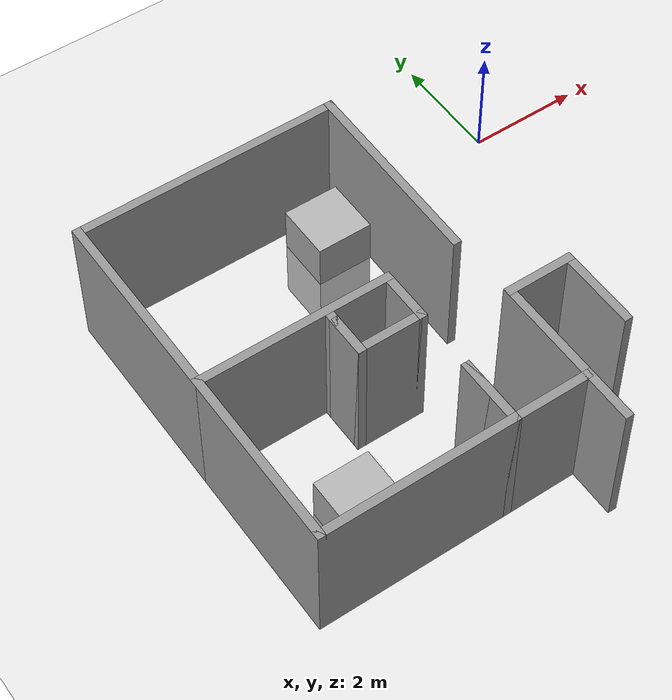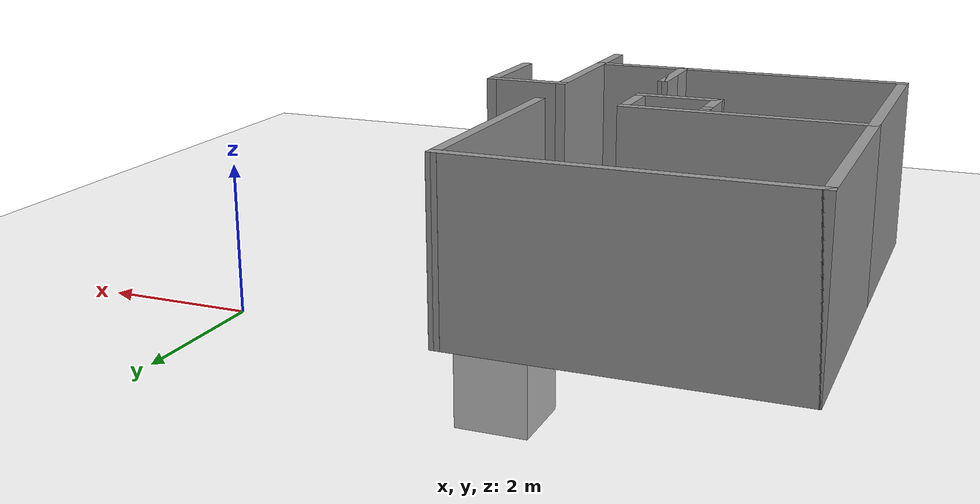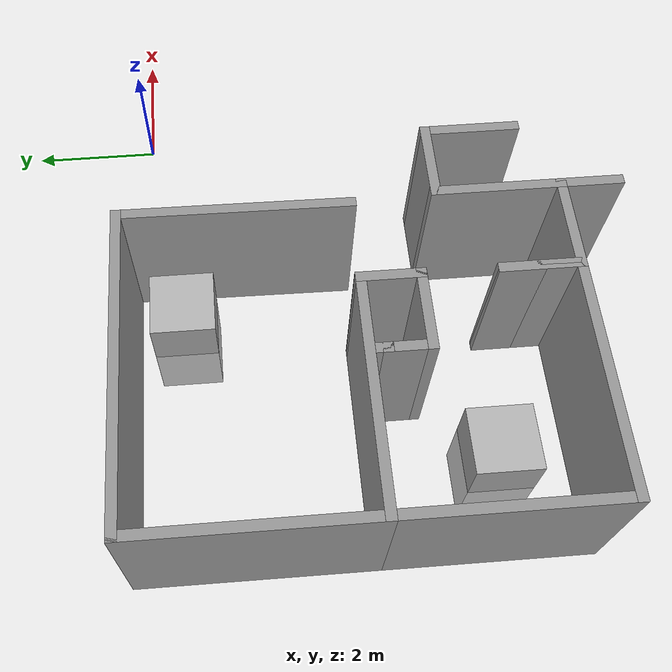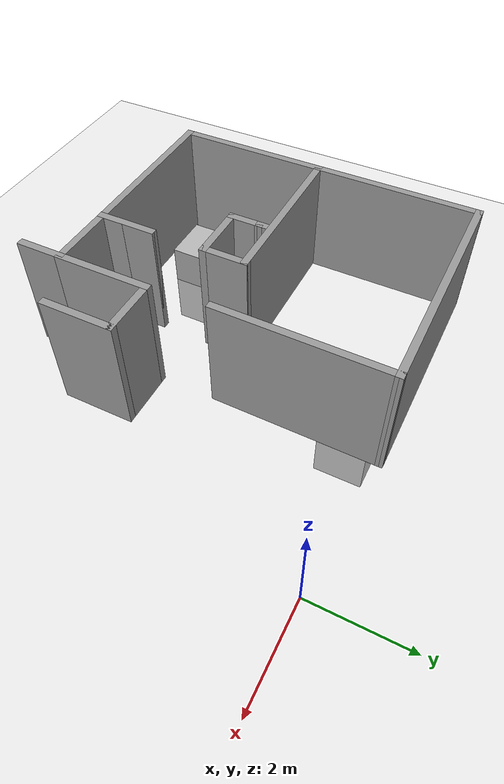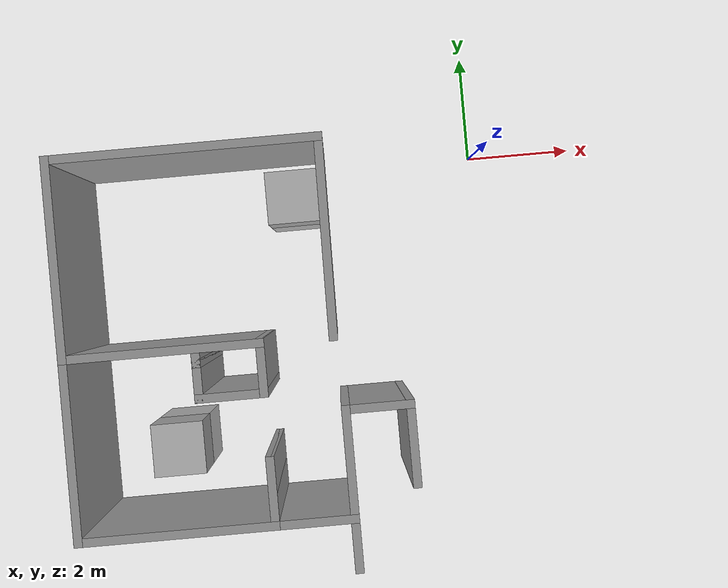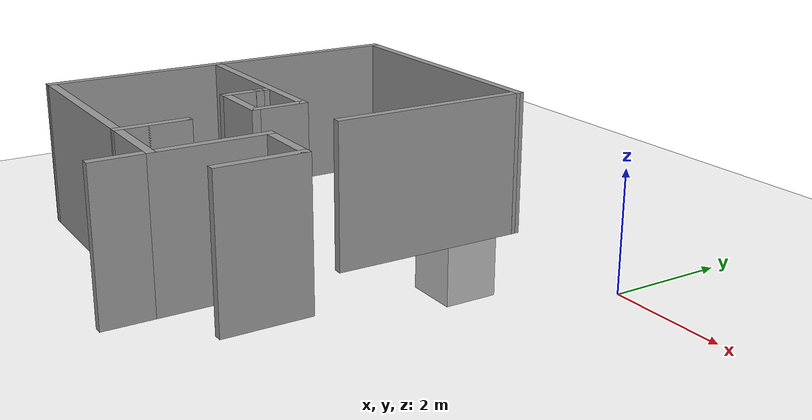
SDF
<sdf version="1.6">
 <world name="default">
  <model name="ground_plane">
   <static>1</static>
   <link name="link">
    <collision name="collision">
     <geometry><plane><normal>0 0 1</normal><size>100 100</size></plane></geometry>
     <surface><friction><ode><mu>100</mu><mu2>50</mu2></ode></friction></surface>
    </collision>
    <visual name="visual">
     <cast_shadows>0</cast_shadows>
     <geometry><plane><normal>0 0 1</normal><size>100 100</size></plane></geometry>
     <material>
      <script><uri>file://media/materials/scripts/gazebo.material</uri><name>Gazebo/Grey</name></script>
     </material>
    </visual>
   </link>
  </model>
  <model name="box_contest3_clone_1">
   <link name="body">
    <inertial>
     <mass>1</mass>
     <inertia><ixx>1</ixx><ixy>0</ixy><ixz>0</ixz><iyy>1</iyy><iyz>0</iyz><izz>1</izz></inertia>
    </inertial>
    <visual name="visual">
     <geometry><mesh><uri>model://box_contest3.dae</uri><scale>1 1 1</scale></mesh></geometry>
     <material><shader type="vertex"><normal_map>__default__</normal_map></shader></material>
    </visual>
    <collision name="collision">
     <geometry><mesh><uri>__default__</uri><scale>1 1 1</scale></mesh></geometry>
     <surface>
      <friction>
       <ode><mu>1</mu><mu2>1</mu2><fdir1>0 0 0</fdir1><slip1>0</slip1><slip2>0</slip2></ode>
       <torsional>
        <coefficient>1</coefficient>
        <patch_radius>0</patch_radius>
        <surface_radius>0</surface_radius>
        <use_patch_radius>1</use_patch_radius>
        <ode><slip>0</slip></ode>
       </torsional>
      </friction>
      <bounce><restitution_coefficient>0</restitution_coefficient><threshold>1e+06</threshold></bounce>
      <contact>
       <collide_without_contact>0</collide_without_contact>
       <collide_without_contact_bitmask>1</collide_without_contact_bitmask>
       <collide_bitmask>1</collide_bitmask>
       <ode>
        <soft_cfm>0</soft_cfm>
        <soft_erp>0.2</soft_erp>
        <kp>1e+13</kp>
        <kd>1</kd>
        <max_vel>0.01</max_vel>
        <min_depth>0</min_depth>
       </ode>
       <bullet>
        <split_impulse>1</split_impulse>
        <split_impulse_penetration_threshold>-0.01</split_impulse_penetration_threshold>
        <soft_cfm>0</soft_cfm>
        <soft_erp>0.2</soft_erp>
        <kp>1e+13</kp>
        <kd>1</kd>
       </bullet>
      </contact>
     </surface>
    </collision>
   </link>
   <static>1</static>
   <pose>-3.54 -0.52 -0.159 3.14159 -1.57079 3.14159</pose>
  </model>
  <model name="box_contest3_clone_2">
   <link name="body">
    <inertial>
     <mass>1</mass>
     <inertia><ixx>1</ixx><ixy>0</ixy><ixz>0</ixz><iyy>1</iyy><iyz>0</iyz><izz>1</izz></inertia>
    </inertial>
    <visual name="visual">
     <geometry><mesh><uri>model://box_contest3.dae</uri><scale>1 1 1</scale></mesh></geometry>
     <material><shader type="vertex"><normal_map>__default__</normal_map></shader></material>
    </visual>
    <collision name="collision">
     <geometry><mesh><uri>__default__</uri><scale>1 1 1</scale></mesh></geometry>
     <surface>
      <friction>
       <ode><mu>1</mu><mu2>1</mu2><fdir1>0 0 0</fdir1><slip1>0</slip1><slip2>0</slip2></ode>
       <torsional>
        <coefficient>1</coefficient>
        <patch_radius>0</patch_radius>
        <surface_radius>0</surface_radius>
        <use_patch_radius>1</use_patch_radius>
        <ode><slip>0</slip></ode>
       </torsional>
      </friction>
      <bounce><restitution_coefficient>0</restitution_coefficient><threshold>1e+06</threshold></bounce>
      <contact>
       <collide_without_contact>0</collide_without_contact>
       <collide_without_contact_bitmask>1</collide_without_contact_bitmask>
       <collide_bitmask>1</collide_bitmask>
       <ode>
        <soft_cfm>0</soft_cfm>
        <soft_erp>0.2</soft_erp>
        <kp>1e+13</kp>
        <kd>1</kd>
        <max_vel>0.01</max_vel>
        <min_depth>0</min_depth>
       </ode>
       <bullet>
        <split_impulse>1</split_impulse>
        <split_impulse_penetration_threshold>-0.01</split_impulse_penetration_threshold>
        <soft_cfm>0</soft_cfm>
        <soft_erp>0.2</soft_erp>
        <kp>1e+13</kp>
        <kd>1</kd>
       </bullet>
      </contact>
     </surface>
    </collision>
   </link>
   <static>1</static>
   <pose>-6.12 -5.12 -0.159 3.14159 -1.57079 3.14159</pose>
  </model>
  <model name="practicehouse">
   <link name="Wall_0">
    <pose>-7.20613 1.97161 0 0 0 -1.5708</pose>
    <visual name="Wall_0_Visual">
     <pose>0 0 1.25 0 -0 0</pose>
     <geometry><box><size>3.54 0.15 2.5</size></box></geometry>
     <material>
      <script><uri>file://media/materials/scripts/gazebo.material</uri><name>Gazebo/Grey</name></script>
      <ambient>1 1 1 1</ambient>
      <diffuse>0.7 0.7 0.7 1</diffuse>
      <specular>0.01 0.01 0.01 1</specular>
      <emissive>0 0 0 1</emissive>
     </material>
    </visual>
    <collision name="Wall_0_Collision">
     <pose>0 0 1.25 0 -0 0</pose>
     <geometry><box><size>3.54 0.15 2.5</size></box></geometry>
     <surface>
      <friction>
       <ode><mu>1</mu><mu2>1</mu2><fdir1>0 0 0</fdir1><slip1>0</slip1><slip2>0</slip2></ode>
       <torsional>
        <coefficient>1</coefficient>
        <patch_radius>0</patch_radius>
        <surface_radius>0</surface_radius>
        <use_patch_radius>1</use_patch_radius>
        <ode><slip>0</slip></ode>
       </torsional>
      </friction>
      <bounce><restitution_coefficient>0</restitution_coefficient><threshold>1e+06</threshold></bounce>
      <contact>
       <collide_without_contact>0</collide_without_contact>
       <collide_without_contact_bitmask>1</collide_without_contact_bitmask>
       <collide_bitmask>1</collide_bitmask>
       <ode>
        <soft_cfm>0</soft_cfm>
        <soft_erp>0.2</soft_erp>
        <kp>1e+13</kp>
        <kd>1</kd>
        <max_vel>0.01</max_vel>
        <min_depth>0</min_depth>
       </ode>
       <bullet>
        <split_impulse>1</split_impulse>
        <split_impulse_penetration_threshold>-0.01</split_impulse_penetration_threshold>
        <soft_cfm>0</soft_cfm>
        <soft_erp>0.2</soft_erp>
        <kp>1e+13</kp>
        <kd>1</kd>
       </bullet>
      </contact>
     </surface>
    </collision>
   </link>
   <link name="Wall_10">
    <pose>-4.95613 0.076607 0 0 -0 1.5708</pose>
    <visual name="Wall_10_Visual">
     <pose>0 0 1.25 0 -0 0</pose>
     <geometry><box><size>0.25 0.15 2.5</size></box></geometry>
     <material>
      <script><uri>file://media/materials/scripts/gazebo.material</uri><name>Gazebo/Grey</name></script>
      <ambient>1 1 1 1</ambient>
      <diffuse>0.7 0.7 0.7 1</diffuse>
      <specular>0.01 0.01 0.01 1</specular>
      <emissive>0 0 0 1</emissive>
     </material>
    </visual>
    <collision name="Wall_10_Collision">
     <pose>0 0 1.25 0 -0 0</pose>
     <geometry><box><size>0.25 0.15 2.5</size></box></geometry>
     <surface>
      <friction>
       <ode><mu>1</mu><mu2>1</mu2><fdir1>0 0 0</fdir1><slip1>0</slip1><slip2>0</slip2></ode>
       <torsional>
        <coefficient>1</coefficient>
        <patch_radius>0</patch_radius>
        <surface_radius>0</surface_radius>
        <use_patch_radius>1</use_patch_radius>
        <ode><slip>0</slip></ode>
       </torsional>
      </friction>
      <bounce><restitution_coefficient>0</restitution_coefficient><threshold>1e+06</threshold></bounce>
      <contact>
       <collide_without_contact>0</collide_without_contact>
       <collide_without_contact_bitmask>1</collide_without_contact_bitmask>
       <collide_bitmask>1</collide_bitmask>
       <ode>
        <soft_cfm>0</soft_cfm>
        <soft_erp>0.2</soft_erp>
        <kp>1e+13</kp>
        <kd>1</kd>
        <max_vel>0.01</max_vel>
        <min_depth>0</min_depth>
       </ode>
       <bullet>
        <split_impulse>1</split_impulse>
        <split_impulse_penetration_threshold>-0.01</split_impulse_penetration_threshold>
        <soft_cfm>0</soft_cfm>
        <soft_erp>0.2</soft_erp>
        <kp>1e+13</kp>
        <kd>1</kd>
       </bullet>
      </contact>
     </surface>
    </collision>
   </link>
   <link name="Wall_12">
    <pose>-7.20613 -1.27339 0 0 0 -1.5708</pose>
    <visual name="Wall_12_Visual">
     <pose>0 0 1.25 0 -0 0</pose>
     <geometry><box><size>3.25 0.15 2.5</size></box></geometry>
     <material>
      <script><uri>file://media/materials/scripts/gazebo.material</uri><name>Gazebo/Grey</name></script>
      <ambient>1 1 1 1</ambient>
      <diffuse>0.7 0.7 0.7 1</diffuse>
      <specular>0.01 0.01 0.01 1</specular>
      <emissive>0 0 0 1</emissive>
     </material>
    </visual>
    <collision name="Wall_12_Collision">
     <pose>0 0 1.25 0 -0 0</pose>
     <geometry><box><size>3.25 0.15 2.5</size></box></geometry>
     <surface>
      <friction>
       <ode><mu>1</mu><mu2>1</mu2><fdir1>0 0 0</fdir1><slip1>0</slip1><slip2>0</slip2></ode>
       <torsional>
        <coefficient>1</coefficient>
        <patch_radius>0</patch_radius>
        <surface_radius>0</surface_radius>
        <use_patch_radius>1</use_patch_radius>
        <ode><slip>0</slip></ode>
       </torsional>
      </friction>
      <bounce><restitution_coefficient>0</restitution_coefficient><threshold>1e+06</threshold></bounce>
      <contact>
       <collide_without_contact>0</collide_without_contact>
       <collide_without_contact_bitmask>1</collide_without_contact_bitmask>
       <collide_bitmask>1</collide_bitmask>
       <ode>
        <soft_cfm>0</soft_cfm>
        <soft_erp>0.2</soft_erp>
        <kp>1e+13</kp>
        <kd>1</kd>
        <max_vel>0.01</max_vel>
        <min_depth>0</min_depth>
       </ode>
       <bullet>
        <split_impulse>1</split_impulse>
        <split_impulse_penetration_threshold>-0.01</split_impulse_penetration_threshold>
        <soft_cfm>0</soft_cfm>
        <soft_erp>0.2</soft_erp>
        <kp>1e+13</kp>
        <kd>1</kd>
       </bullet>
      </contact>
     </surface>
    </collision>
   </link>
   <link name="Wall_13">
    <pose>-5.53113 -2.82339 0 0 -0 0</pose>
    <visual name="Wall_13_Visual">
     <pose>0 0 1.25 0 -0 0</pose>
     <geometry><box><size>3.5 0.15 2.5</size></box></geometry>
     <material>
      <script><uri>file://media/materials/scripts/gazebo.material</uri><name>Gazebo/Grey</name></script>
      <ambient>1 1 1 1</ambient>
      <diffuse>0.7 0.7 0.7 1</diffuse>
      <specular>0.01 0.01 0.01 1</specular>
      <emissive>0 0 0 1</emissive>
     </material>
    </visual>
    <collision name="Wall_13_Collision">
     <pose>0 0 1.25 0 -0 0</pose>
     <geometry><box><size>3.5 0.15 2.5</size></box></geometry>
     <surface>
      <friction>
       <ode><mu>1</mu><mu2>1</mu2><fdir1>0 0 0</fdir1><slip1>0</slip1><slip2>0</slip2></ode>
       <torsional>
        <coefficient>1</coefficient>
        <patch_radius>0</patch_radius>
        <surface_radius>0</surface_radius>
        <use_patch_radius>1</use_patch_radius>
        <ode><slip>0</slip></ode>
       </torsional>
      </friction>
      <bounce><restitution_coefficient>0</restitution_coefficient><threshold>1e+06</threshold></bounce>
      <contact>
       <collide_without_contact>0</collide_without_contact>
       <collide_without_contact_bitmask>1</collide_without_contact_bitmask>
       <collide_bitmask>1</collide_bitmask>
       <ode>
        <soft_cfm>0</soft_cfm>
        <soft_erp>0.2</soft_erp>
        <kp>1e+13</kp>
        <kd>1</kd>
        <max_vel>0.01</max_vel>
        <min_depth>0</min_depth>
       </ode>
       <bullet>
        <split_impulse>1</split_impulse>
        <split_impulse_penetration_threshold>-0.01</split_impulse_penetration_threshold>
        <soft_cfm>0</soft_cfm>
        <soft_erp>0.2</soft_erp>
        <kp>1e+13</kp>
        <kd>1</kd>
       </bullet>
      </contact>
     </surface>
    </collision>
   </link>
   <link name="Wall_14">
    <pose>-3.85613 -2.27339 0 0 -0 1.5708</pose>
    <visual name="Wall_14_Visual">
     <pose>0 0 1.25 0 -0 0</pose>
     <geometry><box><size>1.25 0.15 2.5</size></box></geometry>
     <material>
      <script><uri>file://media/materials/scripts/gazebo.material</uri><name>Gazebo/Grey</name></script>
      <ambient>1 1 1 1</ambient>
      <diffuse>0.7 0.7 0.7 1</diffuse>
      <specular>0.01 0.01 0.01 1</specular>
      <emissive>0 0 0 1</emissive>
     </material>
    </visual>
    <collision name="Wall_14_Collision">
     <pose>0 0 1.25 0 -0 0</pose>
     <geometry><box><size>1.25 0.15 2.5</size></box></geometry>
     <surface>
      <friction>
       <ode><mu>1</mu><mu2>1</mu2><fdir1>0 0 0</fdir1><slip1>0</slip1><slip2>0</slip2></ode>
       <torsional>
        <coefficient>1</coefficient>
        <patch_radius>0</patch_radius>
        <surface_radius>0</surface_radius>
        <use_patch_radius>1</use_patch_radius>
        <ode><slip>0</slip></ode>
       </torsional>
      </friction>
      <bounce><restitution_coefficient>0</restitution_coefficient><threshold>1e+06</threshold></bounce>
      <contact>
       <collide_without_contact>0</collide_without_contact>
       <collide_without_contact_bitmask>1</collide_without_contact_bitmask>
       <collide_bitmask>1</collide_bitmask>
       <ode>
        <soft_cfm>0</soft_cfm>
        <soft_erp>0.2</soft_erp>
        <kp>1e+13</kp>
        <kd>1</kd>
        <max_vel>0.01</max_vel>
        <min_depth>0</min_depth>
       </ode>
       <bullet>
        <split_impulse>1</split_impulse>
        <split_impulse_penetration_threshold>-0.01</split_impulse_penetration_threshold>
        <soft_cfm>0</soft_cfm>
        <soft_erp>0.2</soft_erp>
        <kp>1e+13</kp>
        <kd>1</kd>
       </bullet>
      </contact>
     </surface>
    </collision>
   </link>
   <link name="Wall_15">
    <pose>-3.85613 -2.27339 0 0 0 -1.5708</pose>
    <visual name="Wall_15_Visual">
     <pose>0 0 1.25 0 -0 0</pose>
     <geometry><box><size>1.25 0.15 2.5</size></box></geometry>
     <material>
      <script><uri>file://media/materials/scripts/gazebo.material</uri><name>Gazebo/Grey</name></script>
      <ambient>1 1 1 1</ambient>
      <diffuse>0.7 0.7 0.7 1</diffuse>
      <specular>0.01 0.01 0.01 1</specular>
      <emissive>0 0 0 1</emissive>
     </material>
    </visual>
    <collision name="Wall_15_Collision">
     <pose>0 0 1.25 0 -0 0</pose>
     <geometry><box><size>1.25 0.15 2.5</size></box></geometry>
     <surface>
      <friction>
       <ode><mu>1</mu><mu2>1</mu2><fdir1>0 0 0</fdir1><slip1>0</slip1><slip2>0</slip2></ode>
       <torsional>
        <coefficient>1</coefficient>
        <patch_radius>0</patch_radius>
        <surface_radius>0</surface_radius>
        <use_patch_radius>1</use_patch_radius>
        <ode><slip>0</slip></ode>
       </torsional>
      </friction>
      <bounce><restitution_coefficient>0</restitution_coefficient><threshold>1e+06</threshold></bounce>
      <contact>
       <collide_without_contact>0</collide_without_contact>
       <collide_without_contact_bitmask>1</collide_without_contact_bitmask>
       <collide_bitmask>1</collide_bitmask>
       <ode>
        <soft_cfm>0</soft_cfm>
        <soft_erp>0.2</soft_erp>
        <kp>1e+13</kp>
        <kd>1</kd>
        <max_vel>0.01</max_vel>
        <min_depth>0</min_depth>
       </ode>
       <bullet>
        <split_impulse>1</split_impulse>
        <split_impulse_penetration_threshold>-0.01</split_impulse_penetration_threshold>
        <soft_cfm>0</soft_cfm>
        <soft_erp>0.2</soft_erp>
        <kp>1e+13</kp>
        <kd>1</kd>
       </bullet>
      </contact>
     </surface>
    </collision>
   </link>
   <link name="Wall_16">
    <pose>-3.18113 -2.82339 0 0 -0 0</pose>
    <visual name="Wall_16_Visual">
     <pose>0 0 1.25 0 -0 0</pose>
     <geometry><box><size>1.5 0.15 2.5</size></box></geometry>
     <material>
      <script><uri>file://media/materials/scripts/gazebo.material</uri><name>Gazebo/Grey</name></script>
      <ambient>1 1 1 1</ambient>
      <diffuse>0.7 0.7 0.7 1</diffuse>
      <specular>0.01 0.01 0.01 1</specular>
      <emissive>0 0 0 1</emissive>
     </material>
    </visual>
    <collision name="Wall_16_Collision">
     <pose>0 0 1.25 0 -0 0</pose>
     <geometry><box><size>1.5 0.15 2.5</size></box></geometry>
     <surface>
      <friction>
       <ode><mu>1</mu><mu2>1</mu2><fdir1>0 0 0</fdir1><slip1>0</slip1><slip2>0</slip2></ode>
       <torsional>
        <coefficient>1</coefficient>
        <patch_radius>0</patch_radius>
        <surface_radius>0</surface_radius>
        <use_patch_radius>1</use_patch_radius>
        <ode><slip>0</slip></ode>
       </torsional>
      </friction>
      <bounce><restitution_coefficient>0</restitution_coefficient><threshold>1e+06</threshold></bounce>
      <contact>
       <collide_without_contact>0</collide_without_contact>
       <collide_without_contact_bitmask>1</collide_without_contact_bitmask>
       <collide_bitmask>1</collide_bitmask>
       <ode>
        <soft_cfm>0</soft_cfm>
        <soft_erp>0.2</soft_erp>
        <kp>1e+13</kp>
        <kd>1</kd>
        <max_vel>0.01</max_vel>
        <min_depth>0</min_depth>
       </ode>
       <bullet>
        <split_impulse>1</split_impulse>
        <split_impulse_penetration_threshold>-0.01</split_impulse_penetration_threshold>
        <soft_cfm>0</soft_cfm>
        <soft_erp>0.2</soft_erp>
        <kp>1e+13</kp>
        <kd>1</kd>
       </bullet>
      </contact>
     </surface>
    </collision>
   </link>
   <link name="Wall_17">
    <pose>-2.50613 -1.89839 0 0 -0 1.5708</pose>
    <visual name="Wall_17_Visual">
     <pose>0 0 1.25 0 -0 0</pose>
     <geometry><box><size>2 0.15 2.5</size></box></geometry>
     <material>
      <script><uri>file://media/materials/scripts/gazebo.material</uri><name>Gazebo/Grey</name></script>
      <ambient>1 1 1 1</ambient>
      <diffuse>0.7 0.7 0.7 1</diffuse>
      <specular>0.01 0.01 0.01 1</specular>
      <emissive>0 0 0 1</emissive>
     </material>
    </visual>
    <collision name="Wall_17_Collision">
     <pose>0 0 1.25 0 -0 0</pose>
     <geometry><box><size>2 0.15 2.5</size></box></geometry>
     <surface>
      <friction>
       <ode><mu>1</mu><mu2>1</mu2><fdir1>0 0 0</fdir1><slip1>0</slip1><slip2>0</slip2></ode>
       <torsional>
        <coefficient>1</coefficient>
        <patch_radius>0</patch_radius>
        <surface_radius>0</surface_radius>
        <use_patch_radius>1</use_patch_radius>
        <ode><slip>0</slip></ode>
       </torsional>
      </friction>
      <bounce><restitution_coefficient>0</restitution_coefficient><threshold>1e+06</threshold></bounce>
      <contact>
       <collide_without_contact>0</collide_without_contact>
       <collide_without_contact_bitmask>1</collide_without_contact_bitmask>
       <collide_bitmask>1</collide_bitmask>
       <ode>
        <soft_cfm>0</soft_cfm>
        <soft_erp>0.2</soft_erp>
        <kp>1e+13</kp>
        <kd>1</kd>
        <max_vel>0.01</max_vel>
        <min_depth>0</min_depth>
       </ode>
       <bullet>
        <split_impulse>1</split_impulse>
        <split_impulse_penetration_threshold>-0.01</split_impulse_penetration_threshold>
        <soft_cfm>0</soft_cfm>
        <soft_erp>0.2</soft_erp>
        <kp>1e+13</kp>
        <kd>1</kd>
       </bullet>
      </contact>
     </surface>
    </collision>
   </link>
   <link name="Wall_18">
    <pose>-1.95613 -0.973393 0 0 -0 0</pose>
    <visual name="Wall_18_Visual">
     <pose>0 0 1.25 0 -0 0</pose>
     <geometry><box><size>1.25 0.15 2.5</size></box></geometry>
     <material>
      <script><uri>file://media/materials/scripts/gazebo.material</uri><name>Gazebo/Grey</name></script>
      <ambient>1 1 1 1</ambient>
      <diffuse>0.7 0.7 0.7 1</diffuse>
      <specular>0.01 0.01 0.01 1</specular>
      <emissive>0 0 0 1</emissive>
     </material>
    </visual>
    <collision name="Wall_18_Collision">
     <pose>0 0 1.25 0 -0 0</pose>
     <geometry><box><size>1.25 0.15 2.5</size></box></geometry>
     <surface>
      <friction>
       <ode><mu>1</mu><mu2>1</mu2><fdir1>0 0 0</fdir1><slip1>0</slip1><slip2>0</slip2></ode>
       <torsional>
        <coefficient>1</coefficient>
        <patch_radius>0</patch_radius>
        <surface_radius>0</surface_radius>
        <use_patch_radius>1</use_patch_radius>
        <ode><slip>0</slip></ode>
       </torsional>
      </friction>
      <bounce><restitution_coefficient>0</restitution_coefficient><threshold>1e+06</threshold></bounce>
      <contact>
       <collide_without_contact>0</collide_without_contact>
       <collide_without_contact_bitmask>1</collide_without_contact_bitmask>
       <collide_bitmask>1</collide_bitmask>
       <ode>
        <soft_cfm>0</soft_cfm>
        <soft_erp>0.2</soft_erp>
        <kp>1e+13</kp>
        <kd>1</kd>
        <max_vel>0.01</max_vel>
        <min_depth>0</min_depth>
       </ode>
       <bullet>
        <split_impulse>1</split_impulse>
        <split_impulse_penetration_threshold>-0.01</split_impulse_penetration_threshold>
        <soft_cfm>0</soft_cfm>
        <soft_erp>0.2</soft_erp>
        <kp>1e+13</kp>
        <kd>1</kd>
       </bullet>
      </contact>
     </surface>
    </collision>
   </link>
   <link name="Wall_19">
    <pose>-1.40613 -1.64839 0 0 0 -1.5708</pose>
    <visual name="Wall_19_Visual">
     <pose>0 0 1.25 0 -0 0</pose>
     <geometry><box><size>1.5 0.15 2.5</size></box></geometry>
     <material>
      <script><uri>file://media/materials/scripts/gazebo.material</uri><name>Gazebo/Grey</name></script>
      <ambient>1 1 1 1</ambient>
      <diffuse>0.7 0.7 0.7 1</diffuse>
      <specular>0.01 0.01 0.01 1</specular>
      <emissive>0 0 0 1</emissive>
     </material>
    </visual>
    <collision name="Wall_19_Collision">
     <pose>0 0 1.25 0 -0 0</pose>
     <geometry><box><size>1.5 0.15 2.5</size></box></geometry>
     <surface>
      <friction>
       <ode><mu>1</mu><mu2>1</mu2><fdir1>0 0 0</fdir1><slip1>0</slip1><slip2>0</slip2></ode>
       <torsional>
        <coefficient>1</coefficient>
        <patch_radius>0</patch_radius>
        <surface_radius>0</surface_radius>
        <use_patch_radius>1</use_patch_radius>
        <ode><slip>0</slip></ode>
       </torsional>
      </friction>
      <bounce><restitution_coefficient>0</restitution_coefficient><threshold>1e+06</threshold></bounce>
      <contact>
       <collide_without_contact>0</collide_without_contact>
       <collide_without_contact_bitmask>1</collide_without_contact_bitmask>
       <collide_bitmask>1</collide_bitmask>
       <ode>
        <soft_cfm>0</soft_cfm>
        <soft_erp>0.2</soft_erp>
        <kp>1e+13</kp>
        <kd>1</kd>
        <max_vel>0.01</max_vel>
        <min_depth>0</min_depth>
       </ode>
       <bullet>
        <split_impulse>1</split_impulse>
        <split_impulse_penetration_threshold>-0.01</split_impulse_penetration_threshold>
        <soft_cfm>0</soft_cfm>
        <soft_erp>0.2</soft_erp>
        <kp>1e+13</kp>
        <kd>1</kd>
       </bullet>
      </contact>
     </surface>
    </collision>
   </link>
   <link name="Wall_2">
    <pose>-4.88863 3.66661 0 0 -0 0</pose>
    <visual name="Wall_2_Visual">
     <pose>0 0 1.25 0 -0 0</pose>
     <geometry><box><size>4.78498 0.15 2.5</size></box></geometry>
     <material>
      <script><uri>file://media/materials/scripts/gazebo.material</uri><name>Gazebo/Grey</name></script>
      <ambient>1 1 1 1</ambient>
      <diffuse>0.7 0.7 0.7 1</diffuse>
      <specular>0.01 0.01 0.01 1</specular>
      <emissive>0 0 0 1</emissive>
     </material>
    </visual>
    <collision name="Wall_2_Collision">
     <pose>0 0 1.25 0 -0 0</pose>
     <geometry><box><size>4.78498 0.15 2.5</size></box></geometry>
     <surface>
      <friction>
       <ode><mu>1</mu><mu2>1</mu2><fdir1>0 0 0</fdir1><slip1>0</slip1><slip2>0</slip2></ode>
       <torsional>
        <coefficient>1</coefficient>
        <patch_radius>0</patch_radius>
        <surface_radius>0</surface_radius>
        <use_patch_radius>1</use_patch_radius>
        <ode><slip>0</slip></ode>
       </torsional>
      </friction>
      <bounce><restitution_coefficient>0</restitution_coefficient><threshold>1e+06</threshold></bounce>
      <contact>
       <collide_without_contact>0</collide_without_contact>
       <collide_without_contact_bitmask>1</collide_without_contact_bitmask>
       <collide_bitmask>1</collide_bitmask>
       <ode>
        <soft_cfm>0</soft_cfm>
        <soft_erp>0.2</soft_erp>
        <kp>1e+13</kp>
        <kd>1</kd>
        <max_vel>0.01</max_vel>
        <min_depth>0</min_depth>
       </ode>
       <bullet>
        <split_impulse>1</split_impulse>
        <split_impulse_penetration_threshold>-0.01</split_impulse_penetration_threshold>
        <soft_cfm>0</soft_cfm>
        <soft_erp>0.2</soft_erp>
        <kp>1e+13</kp>
        <kd>1</kd>
       </bullet>
      </contact>
     </surface>
    </collision>
   </link>
   <link name="Wall_24">
    <pose>-2.50613 -3.24839 0 0 0 -1.5708</pose>
    <visual name="Wall_24_Visual">
     <pose>0 0 1.25 0 -0 0</pose>
     <geometry><box><size>1 0.15 2.5</size></box></geometry>
     <material>
      <script><uri>file://media/materials/scripts/gazebo.material</uri><name>Gazebo/Grey</name></script>
      <ambient>1 1 1 1</ambient>
      <diffuse>0.7 0.7 0.7 1</diffuse>
      <specular>0.01 0.01 0.01 1</specular>
      <emissive>0 0 0 1</emissive>
     </material>
    </visual>
    <collision name="Wall_24_Collision">
     <pose>0 0 1.25 0 -0 0</pose>
     <geometry><box><size>1 0.15 2.5</size></box></geometry>
     <surface>
      <friction>
       <ode><mu>1</mu><mu2>1</mu2><fdir1>0 0 0</fdir1><slip1>0</slip1><slip2>0</slip2></ode>
       <torsional>
        <coefficient>1</coefficient>
        <patch_radius>0</patch_radius>
        <surface_radius>0</surface_radius>
        <use_patch_radius>1</use_patch_radius>
        <ode><slip>0</slip></ode>
       </torsional>
      </friction>
      <bounce><restitution_coefficient>0</restitution_coefficient><threshold>1e+06</threshold></bounce>
      <contact>
       <collide_without_contact>0</collide_without_contact>
       <collide_without_contact_bitmask>1</collide_without_contact_bitmask>
       <collide_bitmask>1</collide_bitmask>
       <ode>
        <soft_cfm>0</soft_cfm>
        <soft_erp>0.2</soft_erp>
        <kp>1e+13</kp>
        <kd>1</kd>
        <max_vel>0.01</max_vel>
        <min_depth>0</min_depth>
       </ode>
       <bullet>
        <split_impulse>1</split_impulse>
        <split_impulse_penetration_threshold>-0.01</split_impulse_penetration_threshold>
        <soft_cfm>0</soft_cfm>
        <soft_erp>0.2</soft_erp>
        <kp>1e+13</kp>
        <kd>1</kd>
       </bullet>
      </contact>
     </surface>
    </collision>
   </link>
   <link name="Wall_3">
    <pose>-2.58863 1.97161 0 0 0 -1.58112</pose>
    <visual name="Wall_3_Visual">
     <pose>0 0 1.25 0 -0 0</pose>
     <geometry><box><size>3.5403 0.15 2.5</size></box></geometry>
     <material>
      <script><uri>file://media/materials/scripts/gazebo.material</uri><name>Gazebo/Grey</name></script>
      <ambient>1 1 1 1</ambient>
      <diffuse>0.7 0.7 0.7 1</diffuse>
      <specular>0.01 0.01 0.01 1</specular>
      <emissive>0 0 0 1</emissive>
     </material>
    </visual>
    <collision name="Wall_3_Collision">
     <pose>0 0 1.25 0 -0 0</pose>
     <geometry><box><size>3.5403 0.15 2.5</size></box></geometry>
     <surface>
      <friction>
       <ode><mu>1</mu><mu2>1</mu2><fdir1>0 0 0</fdir1><slip1>0</slip1><slip2>0</slip2></ode>
       <torsional>
        <coefficient>1</coefficient>
        <patch_radius>0</patch_radius>
        <surface_radius>0</surface_radius>
        <use_patch_radius>1</use_patch_radius>
        <ode><slip>0</slip></ode>
       </torsional>
      </friction>
      <bounce><restitution_coefficient>0</restitution_coefficient><threshold>1e+06</threshold></bounce>
      <contact>
       <collide_without_contact>0</collide_without_contact>
       <collide_without_contact_bitmask>1</collide_without_contact_bitmask>
       <collide_bitmask>1</collide_bitmask>
       <ode>
        <soft_cfm>0</soft_cfm>
        <soft_erp>0.2</soft_erp>
        <kp>1e+13</kp>
        <kd>1</kd>
        <max_vel>0.01</max_vel>
        <min_depth>0</min_depth>
       </ode>
       <bullet>
        <split_impulse>1</split_impulse>
        <split_impulse_penetration_threshold>-0.01</split_impulse_penetration_threshold>
        <soft_cfm>0</soft_cfm>
        <soft_erp>0.2</soft_erp>
        <kp>1e+13</kp>
        <kd>1</kd>
       </bullet>
      </contact>
     </surface>
    </collision>
   </link>
   <link name="Wall_5">
    <pose>-5.53113 0.276607 0 0 -0 0</pose>
    <visual name="Wall_5_Visual">
     <pose>0 0 1.25 0 -0 0</pose>
     <geometry><box><size>3.5 0.15 2.5</size></box></geometry>
     <material>
      <script><uri>file://media/materials/scripts/gazebo.material</uri><name>Gazebo/Grey</name></script>
      <ambient>1 1 1 1</ambient>
      <diffuse>0.7 0.7 0.7 1</diffuse>
      <specular>0.01 0.01 0.01 1</specular>
      <emissive>0 0 0 1</emissive>
     </material>
    </visual>
    <collision name="Wall_5_Collision">
     <pose>0 0 1.25 0 -0 0</pose>
     <geometry><box><size>3.5 0.15 2.5</size></box></geometry>
     <surface>
      <friction>
       <ode><mu>1</mu><mu2>1</mu2><fdir1>0 0 0</fdir1><slip1>0</slip1><slip2>0</slip2></ode>
       <torsional>
        <coefficient>1</coefficient>
        <patch_radius>0</patch_radius>
        <surface_radius>0</surface_radius>
        <use_patch_radius>1</use_patch_radius>
        <ode><slip>0</slip></ode>
       </torsional>
      </friction>
      <bounce><restitution_coefficient>0</restitution_coefficient><threshold>1e+06</threshold></bounce>
      <contact>
       <collide_without_contact>0</collide_without_contact>
       <collide_without_contact_bitmask>1</collide_without_contact_bitmask>
       <collide_bitmask>1</collide_bitmask>
       <ode>
        <soft_cfm>0</soft_cfm>
        <soft_erp>0.2</soft_erp>
        <kp>1e+13</kp>
        <kd>1</kd>
        <max_vel>0.01</max_vel>
        <min_depth>0</min_depth>
       </ode>
       <bullet>
        <split_impulse>1</split_impulse>
        <split_impulse_penetration_threshold>-0.01</split_impulse_penetration_threshold>
        <soft_cfm>0</soft_cfm>
        <soft_erp>0.2</soft_erp>
        <kp>1e+13</kp>
        <kd>1</kd>
       </bullet>
      </contact>
     </surface>
    </collision>
   </link>
   <link name="Wall_6">
    <pose>-3.85613 -0.148393 0 0 0 -1.5708</pose>
    <visual name="Wall_6_Visual">
     <pose>0 0 1.25 0 -0 0</pose>
     <geometry><box><size>1 0.15 2.5</size></box></geometry>
     <material>
      <script><uri>file://media/materials/scripts/gazebo.material</uri><name>Gazebo/Grey</name></script>
      <ambient>1 1 1 1</ambient>
      <diffuse>0.7 0.7 0.7 1</diffuse>
      <specular>0.01 0.01 0.01 1</specular>
      <emissive>0 0 0 1</emissive>
     </material>
    </visual>
    <collision name="Wall_6_Collision">
     <pose>0 0 1.25 0 -0 0</pose>
     <geometry><box><size>1 0.15 2.5</size></box></geometry>
     <surface>
      <friction>
       <ode><mu>1</mu><mu2>1</mu2><fdir1>0 0 0</fdir1><slip1>0</slip1><slip2>0</slip2></ode>
       <torsional>
        <coefficient>1</coefficient>
        <patch_radius>0</patch_radius>
        <surface_radius>0</surface_radius>
        <use_patch_radius>1</use_patch_radius>
        <ode><slip>0</slip></ode>
       </torsional>
      </friction>
      <bounce><restitution_coefficient>0</restitution_coefficient><threshold>1e+06</threshold></bounce>
      <contact>
       <collide_without_contact>0</collide_without_contact>
       <collide_without_contact_bitmask>1</collide_without_contact_bitmask>
       <collide_bitmask>1</collide_bitmask>
       <ode>
        <soft_cfm>0</soft_cfm>
        <soft_erp>0.2</soft_erp>
        <kp>1e+13</kp>
        <kd>1</kd>
        <max_vel>0.01</max_vel>
        <min_depth>0</min_depth>
       </ode>
       <bullet>
        <split_impulse>1</split_impulse>
        <split_impulse_penetration_threshold>-0.01</split_impulse_penetration_threshold>
        <soft_cfm>0</soft_cfm>
        <soft_erp>0.2</soft_erp>
        <kp>1e+13</kp>
        <kd>1</kd>
       </bullet>
      </contact>
     </surface>
    </collision>
   </link>
   <link name="Wall_7">
    <pose>-4.40613 -0.573393 0 0 -0 3.14159</pose>
    <visual name="Wall_7_Visual">
     <pose>0 0 1.25 0 -0 0</pose>
     <geometry><box><size>1.25 0.15 2.5</size></box></geometry>
     <material>
      <script><uri>file://media/materials/scripts/gazebo.material</uri><name>Gazebo/Grey</name></script>
      <ambient>1 1 1 1</ambient>
      <diffuse>0.7 0.7 0.7 1</diffuse>
      <specular>0.01 0.01 0.01 1</specular>
      <emissive>0 0 0 1</emissive>
     </material>
    </visual>
    <collision name="Wall_7_Collision">
     <pose>0 0 1.25 0 -0 0</pose>
     <geometry><box><size>1.25 0.15 2.5</size></box></geometry>
     <surface>
      <friction>
       <ode><mu>1</mu><mu2>1</mu2><fdir1>0 0 0</fdir1><slip1>0</slip1><slip2>0</slip2></ode>
       <torsional>
        <coefficient>1</coefficient>
        <patch_radius>0</patch_radius>
        <surface_radius>0</surface_radius>
        <use_patch_radius>1</use_patch_radius>
        <ode><slip>0</slip></ode>
       </torsional>
      </friction>
      <bounce><restitution_coefficient>0</restitution_coefficient><threshold>1e+06</threshold></bounce>
      <contact>
       <collide_without_contact>0</collide_without_contact>
       <collide_without_contact_bitmask>1</collide_without_contact_bitmask>
       <collide_bitmask>1</collide_bitmask>
       <ode>
        <soft_cfm>0</soft_cfm>
        <soft_erp>0.2</soft_erp>
        <kp>1e+13</kp>
        <kd>1</kd>
        <max_vel>0.01</max_vel>
        <min_depth>0</min_depth>
       </ode>
       <bullet>
        <split_impulse>1</split_impulse>
        <split_impulse_penetration_threshold>-0.01</split_impulse_penetration_threshold>
        <soft_cfm>0</soft_cfm>
        <soft_erp>0.2</soft_erp>
        <kp>1e+13</kp>
        <kd>1</kd>
       </bullet>
      </contact>
     </surface>
    </collision>
   </link>
   <link name="Wall_8">
    <pose>-4.95613 -0.273393 0 0 -0 1.5708</pose>
    <visual name="Wall_8_Visual">
     <pose>0 0 1.25 0 -0 0</pose>
     <geometry><box><size>0.75 0.15 2.5</size></box></geometry>
     <material>
      <script><uri>file://media/materials/scripts/gazebo.material</uri><name>Gazebo/Grey</name></script>
      <ambient>1 1 1 1</ambient>
      <diffuse>0.7 0.7 0.7 1</diffuse>
      <specular>0.01 0.01 0.01 1</specular>
      <emissive>0 0 0 1</emissive>
     </material>
    </visual>
    <collision name="Wall_8_Collision">
     <pose>0 0 1.25 0 -0 0</pose>
     <geometry><box><size>0.75 0.15 2.5</size></box></geometry>
     <surface>
      <friction>
       <ode><mu>1</mu><mu2>1</mu2><fdir1>0 0 0</fdir1><slip1>0</slip1><slip2>0</slip2></ode>
       <torsional>
        <coefficient>1</coefficient>
        <patch_radius>0</patch_radius>
        <surface_radius>0</surface_radius>
        <use_patch_radius>1</use_patch_radius>
        <ode><slip>0</slip></ode>
       </torsional>
      </friction>
      <bounce><restitution_coefficient>0</restitution_coefficient><threshold>1e+06</threshold></bounce>
      <contact>
       <collide_without_contact>0</collide_without_contact>
       <collide_without_contact_bitmask>1</collide_without_contact_bitmask>
       <collide_bitmask>1</collide_bitmask>
       <ode>
        <soft_cfm>0</soft_cfm>
        <soft_erp>0.2</soft_erp>
        <kp>1e+13</kp>
        <kd>1</kd>
        <max_vel>0.01</max_vel>
        <min_depth>0</min_depth>
       </ode>
       <bullet>
        <split_impulse>1</split_impulse>
        <split_impulse_penetration_threshold>-0.01</split_impulse_penetration_threshold>
        <soft_cfm>0</soft_cfm>
        <soft_erp>0.2</soft_erp>
        <kp>1e+13</kp>
        <kd>1</kd>
       </bullet>
      </contact>
     </surface>
    </collision>
   </link>
   <link name="Wall_9">
    <pose>-4.95613 0.026607 0 0 -0 0</pose>
    <visual name="Wall_9_Visual">
     <pose>0 0 1.25 0 -0 0</pose>
     <geometry><box><size>0.15 0.15 2.5</size></box></geometry>
     <material>
      <script><uri>file://media/materials/scripts/gazebo.material</uri><name>Gazebo/Grey</name></script>
      <ambient>1 1 1 1</ambient>
      <diffuse>0.7 0.7 0.7 1</diffuse>
      <specular>0.01 0.01 0.01 1</specular>
      <emissive>0 0 0 1</emissive>
     </material>
    </visual>
    <collision name="Wall_9_Collision">
     <pose>0 0 1.25 0 -0 0</pose>
     <geometry><box><size>0.15 0.15 2.5</size></box></geometry>
     <surface>
      <friction>
       <ode><mu>1</mu><mu2>1</mu2><fdir1>0 0 0</fdir1><slip1>0</slip1><slip2>0</slip2></ode>
       <torsional>
        <coefficient>1</coefficient>
        <patch_radius>0</patch_radius>
        <surface_radius>0</surface_radius>
        <use_patch_radius>1</use_patch_radius>
        <ode><slip>0</slip></ode>
       </torsional>
      </friction>
      <bounce><restitution_coefficient>0</restitution_coefficient><threshold>1e+06</threshold></bounce>
      <contact>
       <collide_without_contact>0</collide_without_contact>
       <collide_without_contact_bitmask>1</collide_without_contact_bitmask>
       <collide_bitmask>1</collide_bitmask>
       <ode>
        <soft_cfm>0</soft_cfm>
        <soft_erp>0.2</soft_erp>
        <kp>1e+13</kp>
        <kd>1</kd>
        <max_vel>0.01</max_vel>
        <min_depth>0</min_depth>
       </ode>
       <bullet>
        <split_impulse>1</split_impulse>
        <split_impulse_penetration_threshold>-0.01</split_impulse_penetration_threshold>
        <soft_cfm>0</soft_cfm>
        <soft_erp>0.2</soft_erp>
        <kp>1e+13</kp>
        <kd>1</kd>
       </bullet>
      </contact>
     </surface>
    </collision>
   </link>
   <static>1</static>
   <pose>-0.375353 -3.40655 0 0 -0 0</pose>
  </model>
 </world>
</sdf>
